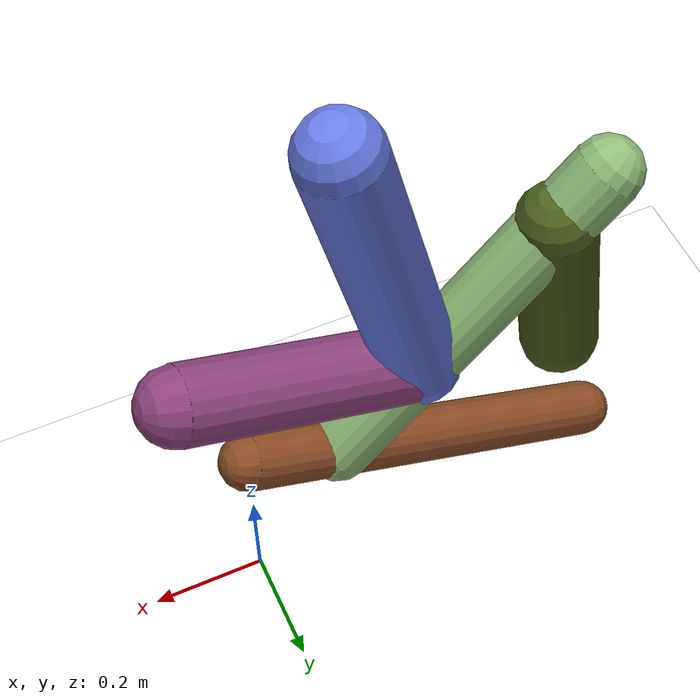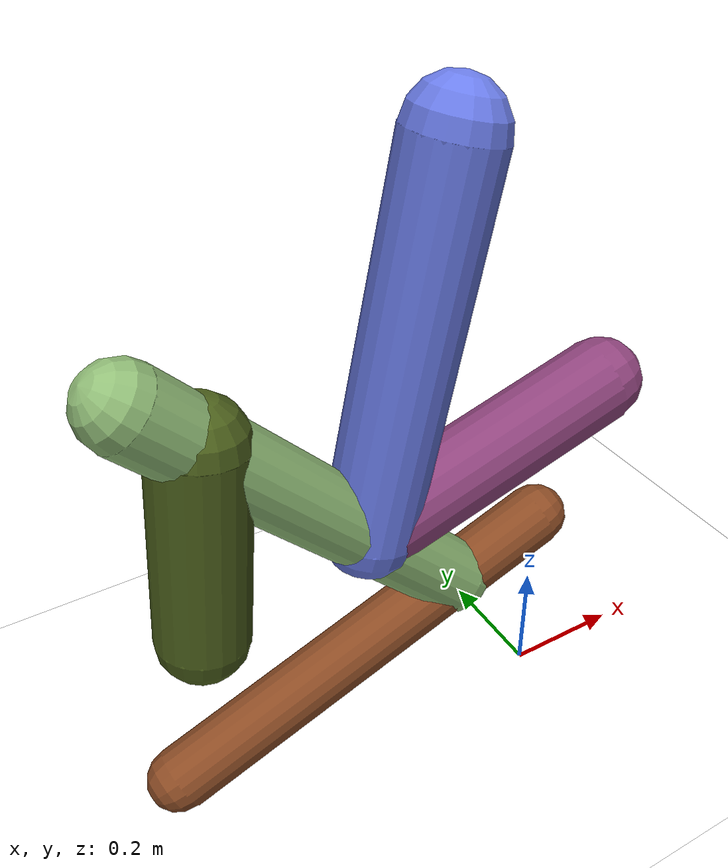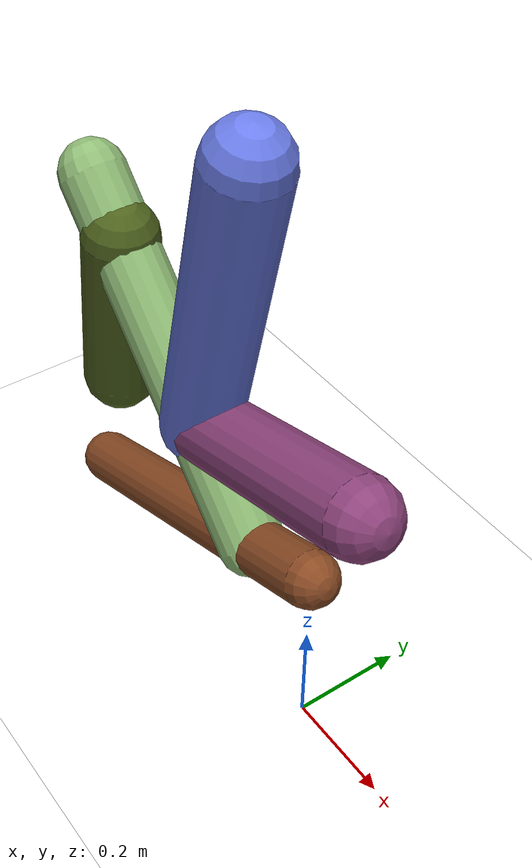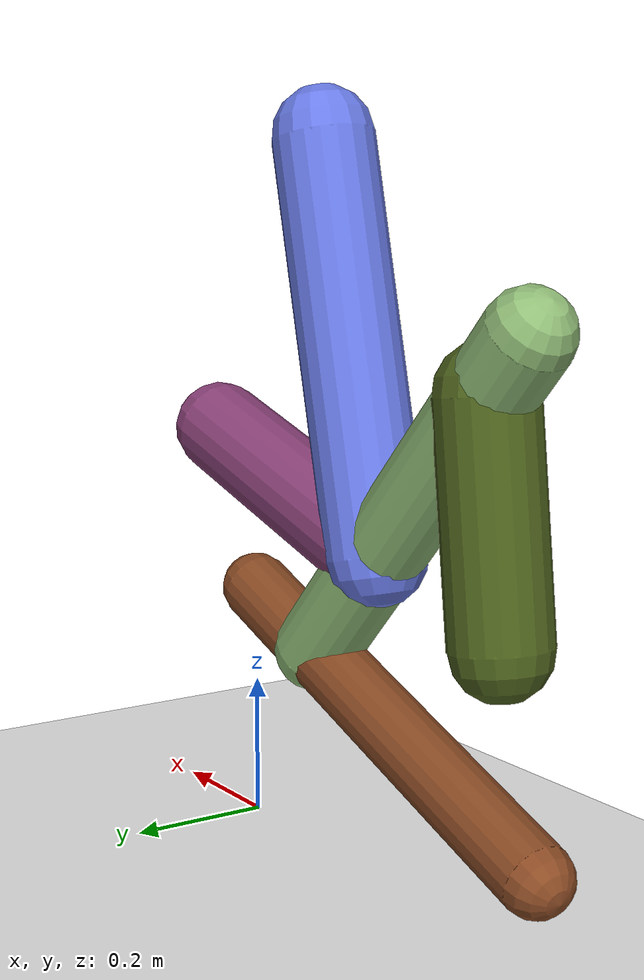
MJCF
<mujoco model="morphology">
  <option timestep="0.01"/>
  <default>
    <default class="/"/>
  </default>
  <asset>
    <texture name="texplane" type="2d" builtin="checker" rgb1="0.1 0.2 0.3" rgb2="0.2 0.3 0.4" width="300" height="300"/>
    <material name="MatPlane" class="/" texture="texplane" texrepeat="20 20" specular="1" shininess="1" reflectance="0.5"/>
  </asset>
  <worldbody>
    <light name="//unnamed_light_0" class="/" directional="true" pos="0 0 1.5" dir="0 0 -1.3" cutoff="1e+02" exponent="1" diffuse="1 1 1" specular="0.1 0.1 0.1"/>
    <geom name="ground" class="/" type="plane" size="15 15 0.5" material="MatPlane" rgba="1 1 1 1"/>
    <body name="body" pos="0 0 0.34">
      <geom name="geom0" class="/" type="capsule" contype="1" conaffinity="1" condim="3" size="0.05" rgba="0.54 0.29 0.14 1" friction="0.4 0.1 0.1" fromto="0 0 0 -0.65 0 -0.24"/>
      <body name="body1" pos="-0.16 0 -0.059">
        <geom name="geom1" class="/" type="capsule" contype="1" conaffinity="1" condim="3" size="0.059" rgba="0.56 0.73 0.46 1" friction="0.4 0.1 0.1" fromto="0 0 0 -0.46 0 0.48"/>
        <body name="body2" pos="-0.38 0 0.4">
          <geom name="geom2" class="/" type="capsule" contype="1" conaffinity="1" condim="3" size="0.068" rgba="0.3 0.38 0.11 1" friction="0.4 0.1 0.1" fromto="0 0 0 -0.036 0 -0.31"/>
          <joint name="joint2" class="/" type="hinge" axis="0 1 0" limited="true" stiffness="20" range="-67 67" armature="0.1" damping="2"/>
        </body>
        <body name="body3" pos="-0.15 0 0.16">
          <geom name="geom3" class="/" type="capsule" contype="1" conaffinity="1" condim="3" size="0.07" rgba="0.41 0.48 0.9 1" friction="0.4 0.1 0.1" fromto="0 0 0 0.13 0 0.55"/>
          <body name="body4" pos="0.00096 0 0.0042">
            <geom name="geom4" class="/" type="capsule" contype="1" conaffinity="1" condim="3" size="0.067" rgba="0.55 0.26 0.48 1" friction="0.4 0.1 0.1" fromto="0 0 0 0.41 0 0.12"/>
          </body>
          <joint name="joint3" class="/" type="hinge" axis="0 1 0" limited="true" stiffness="20" range="-41 41" armature="0.1" damping="2"/>
        </body>
        <joint name="joint1" class="/" type="hinge" axis="0 1 0" limited="true" stiffness="20" range="-52 52" armature="0.1" damping="2"/>
      </body>
      <joint name="rootx" class="/" type="slide" axis="1 0 0" limited="false" stiffness="0" armature="0" damping="0"/>
      <joint name="rootz" class="/" type="slide" axis="0 0 1" limited="false" stiffness="0" armature="0" damping="0"/>
      <joint name="rooty" class="/" type="hinge" axis="0 1 0" limited="false" stiffness="0" armature="0" damping="0"/>
    </body>
  </worldbody>
  <actuator>
    <motor name="motor2" class="/" ctrllimited="true" ctrlrange="-1 1" gear="1.3e+02" joint="joint2"/>
    <motor name="motor3" class="/" ctrllimited="true" ctrlrange="-1 1" gear="1.7e+02" joint="joint3"/>
    <motor name="motor1" class="/" ctrllimited="true" ctrlrange="-1 1" gear="1.7e+02" joint="joint1"/>
  </actuator>
  <sensor>
    <subtreelinvel name="velocity" body="body"/>
  </sensor>
</mujoco>
